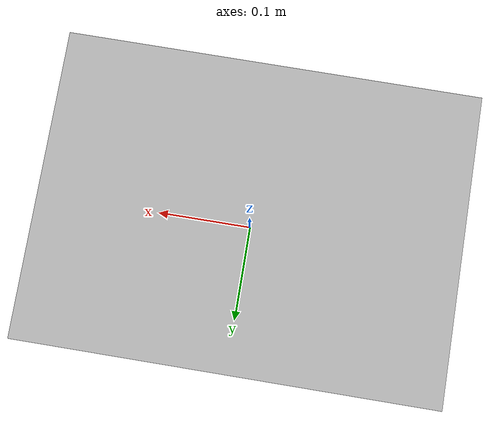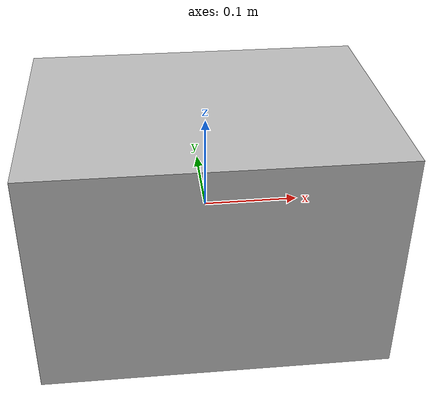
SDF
<?xml version="1.0"?>
<sdf version="1.6">

<model name="deepracer_box_obstacle">
    <link name="link">
      <inertial>
        <mass>1.0</mass>
        <inertia> <!-- inertias are tricky to compute -->
          <!-- http://gazebosim.org/tutorials?tut=inertia&cat=build_robot -->
          <ixx>0.083</ixx>       <!-- for a box: ixx = 0.083 * mass * (y*y + z*z) -->
          <ixy>0.0</ixy>         <!-- for a box: ixy = 0 -->
          <ixz>0.0</ixz>         <!-- for a box: ixz = 0 -->
          <iyy>0.083</iyy>       <!-- for a box: iyy = 0.083 * mass * (x*x + z*z) -->
          <iyz>0.0</iyz>         <!-- for a box: iyz = 0 -->
          <izz>0.083</izz>       <!-- for a box: izz = 0.083 * mass * (x*x + y*y) -->
        </inertia>
      </inertial>

      <collision name='collision'>
        <pose frame="">0 0 0 0 0 0</pose>
        <geometry>
          <mesh>
            <scale>0.36 0.265 0.24</scale>
            <uri>model://meshes/deepracer_box_obstacle/deepracer_box_obstacle.dae</uri>
          </mesh>
        </geometry>
        <surface>
        <contact>
          <!-- Make sure the collision between botcar and any of the obstacles is not considered -->
          <!-- https://classic.gazebosim.org/tutorials?tut=collide_bitmask&cat=physics -->
          <collide_bitmask>0x7FFF</collide_bitmask>
        </contact>
        </surface>
      </collision>
      <pose frame="">0 0 0 0 0 0</pose>

      <visual name="visual_box">
        <pose frame="">0 0 0 0 0 0</pose>
        <geometry>
          <mesh>
            <scale>0.36 0.265 0.24</scale>
            <uri>model://meshes/deepracer_box_obstacle/deepracer_box_obstacle.dae</uri>
          </mesh>
        </geometry>
      </visual>

    </link>
  </model>
</sdf>
